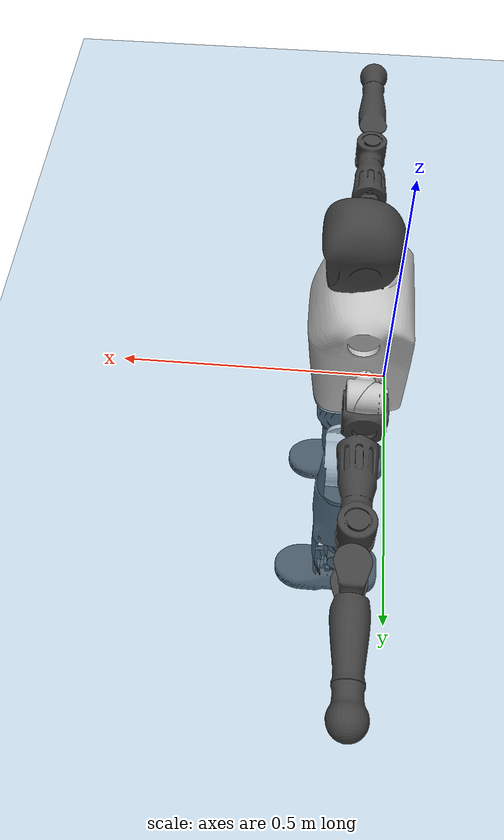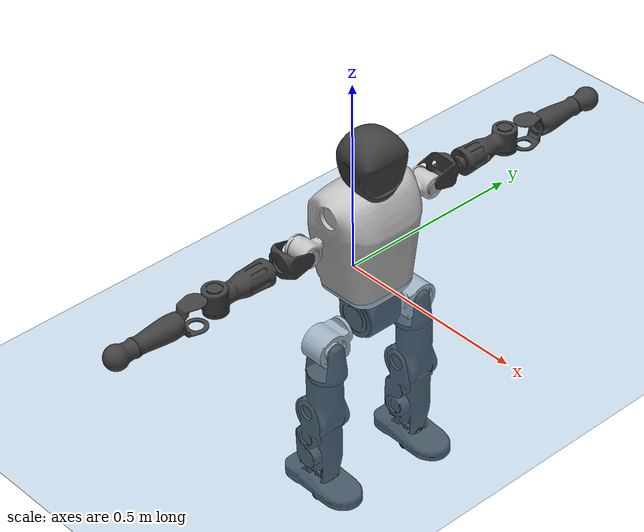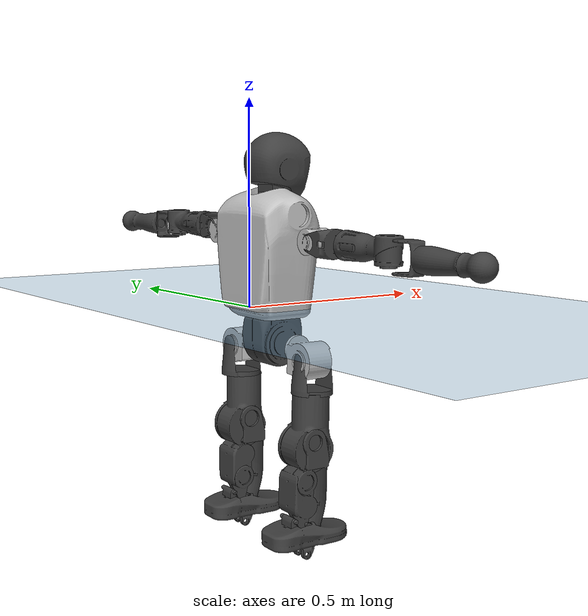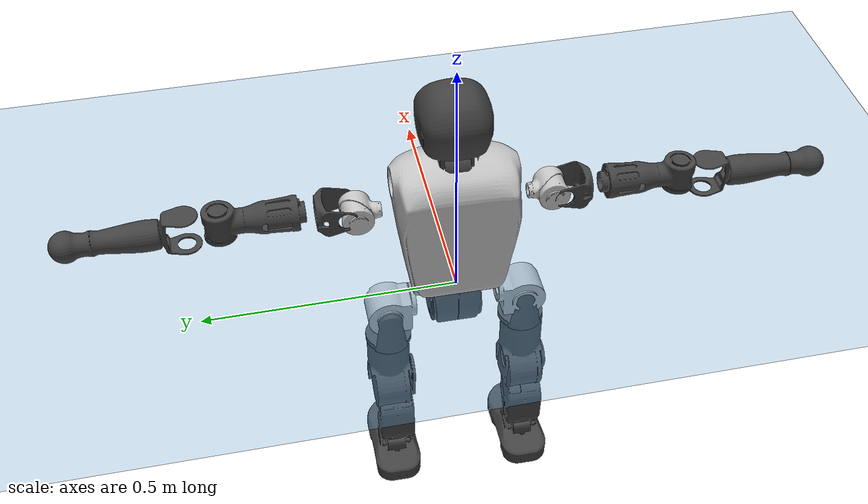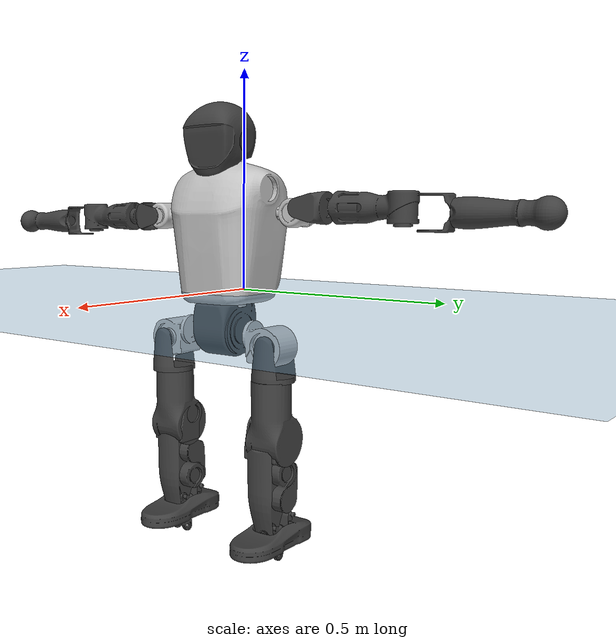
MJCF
<mujoco model="T1">
  <compiler angle="radian" assetdir="assets" balanceinertia="true" inertiafromgeom="false"/>

  <option timestep="0.005" density="1.2" viscosity="2e-05"/>

  <size nkey="1"/>

  <visual>
    <quality shadowsize="8192"/>
    <map shadowclip="0.5"/>
  </visual>

  <default>
    <default class="/">
      <joint armature="0.01" damping="0.01" frictionloss="0.1"/>
      <geom contype="0" conaffinity="0" group="1" solref="-1000 -80"/>
      <site size="0.01 0.005 0.005" group="5"/>
      <general forcelimited="true" biastype="affine" gainprm="25" biasprm="0 -25 -0.6"/>
      <default class="t1">
        <geom rgba="0.25 0.25 0.25 1"/>
        <default class="visual">
          <geom type="mesh" group="2"/>
        </default>
        <default class="collision">
          <geom group="3"/>
        </default>
        <default class="foot">
          <geom size="0.1115 0.05 0.015" type="box" condim="6" group="4" priority="1" solimp="0.015 1 0.015"/>
        </default>
        <default class="reward_collision_sphere">
          <geom group="5" rgba="1 0 0 1"/>
        </default>
      </default>
    </default>
  </default>

  <asset>
    <texture type="skybox" colorspace="auto" name="//unnamed_texture_0" builtin="gradient" rgb1="0.95 0.95 0.95" rgb2="0.95 0.95 0.95" width="100" height="600"/>
    <texture type="2d" colorspace="auto" name="texplane" builtin="checker" rgb1="0.345 0.575 0.748" rgb2="0.345 0.575 0.748" markrgb="1 1 1" width="512" height="512"/>
    <material name="MatPlane" class="/" texture="texplane" texuniform="true" texrepeat="2 2" specular="0.9"/>
    <mesh name="Trunk" class="/" file="Trunk.stl"/>
    <mesh name="H1" class="/" file="H1.stl"/>
    <mesh name="H2" class="/" file="H2.stl"/>
    <mesh name="AL1" class="/" file="AL1.stl"/>
    <mesh name="AL2" class="/" file="AL2.stl"/>
    <mesh name="AL3" class="/" file="AL3.stl"/>
    <mesh name="left_hand_link" class="/" file="left_hand_link.stl"/>
    <mesh name="AR1" class="/" file="AR1.stl"/>
    <mesh name="AR2" class="/" file="AR2.stl"/>
    <mesh name="AR3" class="/" file="AR3.stl"/>
    <mesh name="right_hand_link" class="/" file="right_hand_link.stl"/>
    <mesh name="Waist" class="/" file="Waist.stl"/>
    <mesh name="Hip_Pitch_Left" class="/" file="Hip_Pitch_Left.stl"/>
    <mesh name="Hip_Roll_Left" class="/" file="Hip_Roll_Left.stl"/>
    <mesh name="Hip_Yaw_Left" class="/" file="Hip_Yaw_Left.stl"/>
    <mesh name="Shank_Left" class="/" file="Shank_Left.stl"/>
    <mesh name="Ankle_Cross_Left" class="/" file="Ankle_Cross_Left.stl"/>
    <mesh name="left_foot_link" class="/" file="left_foot_link.stl"/>
    <mesh name="Hip_Pitch_Right" class="/" file="Hip_Pitch_Right.stl"/>
    <mesh name="Hip_Roll_Right" class="/" file="Hip_Roll_Right.stl"/>
    <mesh name="Hip_Yaw_Right" class="/" file="Hip_Yaw_Right.stl"/>
    <mesh name="Shank_Right" class="/" file="Shank_Right.stl"/>
    <mesh name="Ankle_Cross_Right" class="/" file="Ankle_Cross_Right.stl"/>
    <mesh name="right_foot_link" class="/" file="right_foot_link.stl"/>
  </asset>

  <worldbody>
    <geom name="floor" class="/" size="100 100 0.125" type="plane" group="0" material="MatPlane"/>
    <light name="toplight_shadow" class="/" pos="0 0 5" dir="0.0990148 0.0990148 -0.990148" type="directional" ambient="0.04 0.04 0.04" diffuse="0.55 0.55 0.55" specular="0.12 0.12 0.12"/>
    <light name="toplight_fill" class="/" pos="0 0 5" dir="0.0990148 0.0990148 -0.990148" type="directional" castshadow="false" ambient="0.04 0.04 0.04" diffuse="0.3 0.3 0.3" specular="0.08 0.08 0.08"/>
    <body name="trunk" childclass="t1" pos="-0.000984137 -0.00497241 0.00928613" quat="0.999987 0.00433083 -0.00080124 -0.00260549">
      <inertial pos="0.0573733 -0.000993287 0.0832127" quat="0.999956 -0.000346155 -0.00937435 -0.000735455" mass="15.2548" diaginertia="0.117322 0.404977 0.017714"/>
      <joint name="//unnamed_joint_0" type="free" armature="0" damping="0" frictionloss="0"/>
      <geom name="//unnamed_geom_1" class="visual" rgba="0.76 0.76 0.76 1" mesh="Trunk"/>
      <geom name="//unnamed_geom_2" class="collision" size="0.0792693 0.105692 0.158539" pos="0.0612669 0 0.0926273" type="box"/>
      <geom name="//unnamed_geom_3" class="reward_collision_sphere" size="0.121546" pos="0.0612669 0 0.0771895"/>
      <geom name="//unnamed_geom_4" class="reward_collision_sphere" size="0.0158539" pos="0.0612669 0.11711 0"/>
      <geom name="//unnamed_geom_5" class="reward_collision_sphere" size="0.0158539" pos="0.0612669 -0.11711 0"/>
      <geom name="//unnamed_geom_6" class="reward_collision_sphere" size="0.0158539" pos="0.0612669 0.147421 0.138941"/>
      <geom name="//unnamed_geom_7" class="reward_collision_sphere" size="0.0158539" pos="0.0612669 -0.147421 0.138941"/>
      <site name="imu" pos="0.0454432 -0.00778559 -0.00745309" size="0.0105692"/>
      <camera name="track" pos="0 -2.75552 0" quat="0.707107 0.707107 0 0" mode="trackcom"/>
      <camera name="ego_camera" pos="0.124576 0 0.324196" quat="-0.5 -0.5 0.5 0.5"/>
      <body name="H1" pos="0.0584928 -0.0012064 0.181757" quat="0.999991 0.00248241 -0.00312796 -0.0015723">
        <inertial pos="-0.00753082 -0.00527423 0.0439966" quat="0.764208 -0.0161041 0.0105271 0.644683" mass="0.49545" diaginertia="0.000257446 0.00100596 4.42165e-05"/>
        <joint name="AAHead_yaw" pos="0 0 0" axis="0.000159578 0.00859425 0.999963" range="-1.35265 1.58427" armature="0.0113512" damping="0.0223394" frictionloss="0.0949796"/>
        <geom name="//unnamed_geom_8" class="visual" mesh="H1"/>
        <body name="H2" pos="1.95562e-05 -0.000682065 0.0416086" quat="0.999988 -0.00329609 0.0019538 -0.00302806">
          <inertial pos="0.00773337 0.00205825 0.0751359" quat="0.988613 0.1057 -0.0732248 -0.0781649" mass="0.851278" diaginertia="0.00245995 0.0104735 0.000476614"/>
          <joint name="Head_pitch" pos="0 0 0" axis="0.000689568 -0.999018 -0.0443013" stiffness="0.0123405" range="-1.1004 0.165865" armature="0.00651417" damping="0" frictionloss="0.0539354"/>
          <geom name="//unnamed_geom_9" class="visual" mesh="H2"/>
          <geom name="//unnamed_geom_10" class="collision" size="0.0845539" pos="0.0102112 0 0.0849084"/>
          <geom name="//unnamed_geom_11" class="reward_collision_sphere" size="0.0951232" pos="0.0204223 0 0.0771895"/>
        </body>
      </body>
      <body name="AL1" pos="0.0494677 0.142302 0.165578" quat="0.999999 0.000456763 0.000284804 0.000922755">
        <inertial pos="0.00928329 0.0643839 0.0029575" quat="0.499145 0.509037 -0.51834 0.472291" mass="0.659117" diaginertia="0.00158816 0.00585403 8.2958e-05"/>
        <joint name="Left_Shoulder_Pitch" pos="0 0 0" axis="0.00470707 0.999982 -0.00382472" stiffness="0.0034378" range="-3.3184 1.22034" armature="0.0112189" damping="0" frictionloss="0.117683"/>
        <geom name="//unnamed_geom_12" class="visual" rgba="0.76 0.76 0.76 1" mesh="AL1"/>
        <body name="AL2" pos="0.000427193 0.067462 0.00999358" quat="0.999989 -0.00312678 -0.00309134 0.00133566">
          <inertial pos="0.00602828 0.0501567 0.00795975" quat="0.48732 0.520229 -0.478594 0.512668" mass="0.176831" diaginertia="0.000457042 0.00185377 4.91385e-05"/>
          <joint name="Left_Shoulder_Roll" pos="0 0 0" axis="-0.998916 0.0382378 -0.026532" range="-1.54332 1.74247" armature="0.0111486" damping="0.0108054" frictionloss="0.154429"/>
          <geom name="//unnamed_geom_13" class="visual" mesh="AL2"/>
          <body name="AL3" pos="0.00962283 0.0864969 0.000177719" quat="0.999999 -0.000702901 -0.00079093 -9.61585e-05">
            <inertial pos="-0.000493548 0.118026 -0.00822759" quat="0.707469 0.70674 -0.00227152 -0.000993089" mass="1.17654" diaginertia="0.0137899 0.0621979 0.000177859"/>
            <joint name="Left_Elbow_Pitch" pos="0 0 0" axis="0.00162919 -0.999095 -0.0424986" range="-2.26302 2.25469" armature="0.0112158" damping="0.00164453" frictionloss="0.0929913"/>
            <geom name="//unnamed_geom_14" class="visual" mesh="AL3"/>
            <geom name="//unnamed_geom_15" class="collision" size="0.0317077 0.0792693" pos="0 0.0688881 0" quat="0.707105 0.707108 0 0" type="cylinder"/>
            <geom name="//unnamed_geom_16" class="reward_collision_sphere" size="0.0380493"/>
            <body name="left_hand_link" pos="0.00508895 0.211383 -0.0101932" quat="1 -0.000785797 0.000270475 -6.56322e-06">
              <inertial pos="-0.000473048 0.148009 -0.00548259" quat="0.703827 0.710329 -0.00735865 -0.00253871" mass="0.348228" diaginertia="0.00887939 0.0329465 5.15238e-05"/>
              <joint name="Left_Elbow_Yaw" pos="0 0 0" axis="0.0124185 0.0379294 0.999203" stiffness="0.0279991" range="-2.46404 0.0399354" armature="0.0114812" damping="0.0182386" frictionloss="0.0802566"/>
              <geom name="//unnamed_geom_17" class="visual" mesh="left_hand_link"/>
              <geom name="//unnamed_geom_18" class="collision" size="0.0317077 0.0924809" pos="0 0.179109 0" quat="0.707105 0.707108 0 0" type="cylinder"/>
              <geom name="//unnamed_geom_19" class="reward_collision_sphere" size="0.0528462"/>
              <geom name="//unnamed_geom_20" class="reward_collision_sphere" size="0.0369923" pos="0 0.151554 0"/>
              <geom name="//unnamed_geom_21" class="reward_collision_sphere" size="0.0369923" pos="0 0.296219 0"/>
            </body>
          </body>
        </body>
      </body>
      <body name="AR1" pos="0.0522772 -0.143645 0.161635" quat="0.999991 0.00264076 0.00103335 -0.00330096">
        <inertial pos="-0.00100759 -0.059198 4.6765e-05" quat="0.505877 0.485011 -0.514925 0.493664" mass="0.623534" diaginertia="0.00168541 0.00665635 8.02266e-05"/>
        <joint name="Right_Shoulder_Pitch" pos="0 0 0" axis="0.00100934 -0.999997 -0.00211855" stiffness="0.0376709" range="-1.21385 3.21021" armature="0.0109168" damping="0.0420891" frictionloss="0.113618"/>
        <geom name="//unnamed_geom_22" class="visual" rgba="0.76 0.76 0.76 1" mesh="AR1"/>
        <body name="AR2" pos="-0.000821853 -0.0655759 -0.000724947" quat="0.999997 0.00100315 -0.00139468 -0.00160028">
          <inertial pos="0.00612794 -0.0509136 -0.0052964" quat="0.514305 0.480226 -0.512212 0.492454" mass="0.208995" diaginertia="0.000390922 0.00170502 5.35871e-05"/>
          <joint name="Right_Shoulder_Roll" pos="0 0 0" axis="-0.999932 0.0114569 -0.00236357" range="-1.75065 1.59415" armature="0.0103887" damping="0" frictionloss="0.0638444"/>
          <geom name="//unnamed_geom_23" class="visual" mesh="AR2"/>
          <body name="AR3" pos="0.000229873 -0.090604 0.000976769" quat="1 -3.60576e-05 6.70806e-05 0.000223106">
            <inertial pos="0.00979316 -0.115373 4.46151e-05" quat="0.690162 0.723503 -0.00779413 0.0126242" mass="1.07368" diaginertia="0.015275 0.0697596 0.000169609"/>
            <joint name="Right_Elbow_Pitch" pos="0 0 0" axis="-0.00323991 0.999842 -0.017455" stiffness="0.0510051" range="-2.28471 2.33707" armature="0.014365" damping="0.00971216" frictionloss="0.097598"/>
            <geom name="//unnamed_geom_24" class="visual" mesh="AR3"/>
            <geom name="//unnamed_geom_25" class="collision" size="0.0317077 0.0792693" pos="0 -0.0688881 0" quat="0.707105 0.707108 0 0" type="cylinder"/>
            <geom name="//unnamed_geom_26" class="reward_collision_sphere" size="0.0380493"/>
            <body name="right_hand_link" pos="-0.00115365 -0.20275 -0.0099358" quat="1 -0.000189021 -0.000194532 0.000224619">
              <inertial pos="0.00517225 -0.157248 0.00146275" quat="0.704408 0.709786 -0.00181659 -0.00295367" mass="0.403393" diaginertia="0.00919288 0.0430148 5.88285e-05"/>
              <joint name="Right_Elbow_Yaw" pos="0 0 0" axis="-0.00611882 -0.00345256 0.999975" stiffness="0.00151481" range="-0.0334869 2.43031" armature="0.0114955" damping="0.0230699" frictionloss="0.115423"/>
              <geom name="//unnamed_geom_27" class="visual" mesh="right_hand_link"/>
              <geom name="//unnamed_geom_28" class="collision" size="0.0317077 0.0924809" pos="0 -0.179109 0" quat="0.707105 0.707108 0 0" type="cylinder"/>
              <geom name="//unnamed_geom_29" class="reward_collision_sphere" size="0.0528462"/>
              <geom name="//unnamed_geom_30" class="reward_collision_sphere" size="0.0369923" pos="0 -0.151554 0"/>
              <geom name="//unnamed_geom_31" class="reward_collision_sphere" size="0.0369923" pos="0 -0.296219 0"/>
            </body>
          </body>
        </body>
      </body>
      <body name="Waist" pos="0.0640354 -0.00131548 -0.0953472" quat="1 1.49065e-05 0.000380364 -0.000198115">
        <inertial pos="-0.00127524 0.00169519 0.00350773" quat="0.983222 0.00869393 -0.182205 -0.00035074" mass="3.03952" diaginertia="0.00632135 0.0235239 0.0013751"/>
        <joint name="Waist" pos="0 0 0" axis="-0.00166975 0.000641037 0.999998" stiffness="0.0212319" range="-1.44821 1.5006" armature="0.0117573" damping="0.0494526" frictionloss="0.101934"/>
        <geom name="//unnamed_geom_32" class="visual" mesh="Waist"/>
        <body name="Hip_Pitch_Left" pos="0.00368282 0.135614 -0.00842894" quat="0.999999 -0.000357589 0.00110114 -0.000555831">
          <inertial pos="0.00567416 -0.00845381 -0.00380851" quat="0.975177 0.220912 0.0148286 0.00280889" mass="1.07139" diaginertia="0.00188077 0.00739612 0.000345551"/>
          <joint name="Left_Hip_Pitch" pos="0 0 0" axis="0.0124522 0.999761 0.0179455" stiffness="0.0335617" range="-1.94207 1.60396" armature="0.0107596" damping="0.0430242" frictionloss="0.145198"/>
          <geom name="//unnamed_geom_33" class="visual" rgba="0.76 0.76 0.76 1" mesh="Hip_Pitch_Left"/>
          <body name="Hip_Roll_Left" pos="-0.00263816 0.000945834 -0.0196247" quat="1 -8.86413e-05 -3.06883e-05 1.67477e-05">
            <inertial pos="0.000257969 -0.000433213 -0.0419399" quat="0.71142 -0.00821116 0.00603977 0.702693" mass="0.412035" diaginertia="0.00178161 0.00660853 0.000133631"/>
            <joint name="Left_Hip_Roll" pos="0 0 0" axis="-0.999974 0.00719572 0.000107641" range="-1.6855 0.191175" armature="0.0102085" damping="0" frictionloss="0.136085"/>
            <geom name="//unnamed_geom_34" class="visual" mesh="Hip_Roll_Left"/>
            <geom name="//unnamed_geom_35" class="reward_collision_sphere" size="0.0581308"/>
            <body name="Hip_Yaw_Left" pos="0.00676893 0.000575128 -0.0740658" quat="1 4.99754e-05 2.789e-05 0.000187145">
              <inertial pos="-0.00675705 0.00144906 -0.0600261" quat="0.69318 -0.0305567 -0.0275733 0.719588" mass="2.78816" diaginertia="0.0251825 0.126527 0.000737223"/>
              <joint name="Left_Hip_Yaw" pos="0 0 0" axis="0.0154848 -0.0272879 -0.999508" stiffness="0.051866" range="-1.0422 0.880034" armature="0.0138405" damping="0.0285424" frictionloss="0.148468"/>
              <geom name="//unnamed_geom_36" class="visual" mesh="Hip_Yaw_Left"/>
              <geom name="//unnamed_geom_37" class="collision" size="0.0528462 0.0845539" type="cylinder"/>
              <body name="Shank_Left" pos="-0.00972574 -0.00870882 -0.111626" quat="0.999988 0.00343864 0.0011039 -0.00333406">
                <inertial pos="-0.009424 0.0110978 -0.0942769" quat="0.998449 0.0108212 0.0140041 0.0527882" mass="1.91758" diaginertia="0.0337064 0.160735 0.000500133"/>
                <joint name="Left_Knee_Pitch" pos="0 0 0" axis="-0.00517739 0.999856 0.0161701" range="0.00665917 2.33242" armature="0.00746931" damping="0.00615681" frictionloss="0.151242"/>
                <geom name="//unnamed_geom_38" class="visual" mesh="Shank_Left"/>
                <geom name="//unnamed_geom_39" class="collision" size="0.0528462 0.0792693" pos="0 0 -0.0926273" type="cylinder"/>
                <geom name="//unnamed_geom_40" class="reward_collision_sphere" size="0.0687001"/>
                <body name="Ankle_Cross_Left" pos="0.00999976 0.0016898 -0.217322" quat="1 0.000150558 9.39429e-05 -3.31921e-05">
                  <inertial pos="-0.00201933 -0.00163705 -0.00427966" quat="0.4795 0.528808 0.559346 0.421395" mass="0.083762" diaginertia="3.20156e-05 0.000123356 3.09994e-06"/>
                  <joint name="Left_Ankle_Pitch" pos="0 0 0" axis="-0.0228156 0.999714 -0.00710723" stiffness="0.000896196" range="-0.863424 0.508571" armature="0.0113424" damping="0.00106116" frictionloss="0.0969154"/>
                  <geom name="//unnamed_geom_41" class="visual" mesh="Ankle_Cross_Left"/>
                  <body name="left_foot_link" pos="-0.00588972 0.00230814 -0.0111982" quat="0.999997 0.00144112 0.00196008 0.000289457">
                    <inertial pos="0.00116491 0.000611958 -0.0175693" quat="0.00207073 0.621211 -0.000957438 0.78364" mass="0.875053" diaginertia="0.00328093 0.0117956 0.000639797"/>
                    <joint name="Left_Ankle_Roll" pos="0 0 0" axis="-0.999785 0.0191766 -0.0078533" range="-0.330201 0.387843" armature="0.0108998" damping="0" frictionloss="0.102883"/>
                    <geom name="//unnamed_geom_42" class="visual" mesh="left_foot_link"/>
                    <geom name="left_foot" class="foot" size="0.0800978 0.0350963 0.014095" pos="0.0102112 0 -0.0115784"/>
                    <geom name="//unnamed_geom_44" class="reward_collision_sphere" size="0.0549601" pos="0.0102112 0 -0.0115784"/>
                    <geom name="//unnamed_geom_45" class="reward_collision_sphere" size="0.0317077" pos="0.097006 -0.0316885 -0.0115784"/>
                    <geom name="//unnamed_geom_46" class="reward_collision_sphere" size="0.0317077" pos="-0.0714781 -0.0316885 -0.0115784"/>
                    <site name="left_foot" class="foot" pos="0.0102112 0 -0.0115784" size="0.0105692"/>
                  </body>
                </body>
              </body>
            </body>
          </body>
        </body>
        <body name="Hip_Pitch_Right" pos="0.00599791 -0.14765 -0.00804608" quat="0.99999 0.00313992 0.00318591 0.000230995">
          <inertial pos="0.000918065 0.0203977 -0.0142508" quat="0.973814 -0.227249 0.00558244 0.00358358" mass="1.19349" diaginertia="0.00202644 0.00725073 0.000325315"/>
          <joint name="Right_Hip_Pitch" pos="0 0 0" axis="0.00347255 -0.999955 0.00883479" stiffness="0.0188891" range="-1.66309 1.95655" armature="0.0107956" damping="0" frictionloss="0.0544769"/>
          <geom name="//unnamed_geom_47" class="visual" rgba="0.76 0.76 0.76 1" mesh="Hip_Pitch_Right"/>
          <body name="Hip_Roll_Right" pos="0.00810799 -0.00266948 -0.0219247" quat="1 -0.000570968 0.000517261 0.000249149">
            <inertial pos="0.0026407 -0.000110452 -0.0444463" quat="0.706511 -0.00399622 -0.00419735 0.707678" mass="0.454187" diaginertia="0.00220836 0.00738726 0.000139196"/>
            <joint name="Right_Hip_Roll" pos="0 0 0" axis="-0.99986 0.0131766 -0.0103062" stiffness="0.00557568" range="-0.300626 1.60567" armature="0.00919465" damping="0.0200194" frictionloss="0.0679092"/>
            <geom name="//unnamed_geom_48" class="visual" mesh="Hip_Roll_Right"/>
            <geom name="//unnamed_geom_49" class="reward_collision_sphere" size="0.0581308"/>
            <body name="Hip_Yaw_Right" pos="-0.00709073 -0.00195888 -0.0707133" quat="1 0.000344255 0.000142847 0.000620131">
              <inertial pos="0.000155194 -0.010702 -0.0686378" quat="0.718236 -0.0253968 -0.0286387 0.694746" mass="2.95526" diaginertia="0.0289716 0.139881 0.000823561"/>
              <joint name="Right_Hip_Yaw" pos="0 0 0" axis="-0.00782736 -0.0026329 -0.999966" range="-0.994093 1.02664" armature="0.0111882" damping="0" frictionloss="0.107465"/>
              <geom name="//unnamed_geom_50" class="visual" mesh="Hip_Yaw_Right"/>
              <geom name="//unnamed_geom_51" class="collision" size="0.0528462 0.0845539" type="cylinder"/>
              <body name="Shank_Right" pos="-0.0175299 -0.00283538 -0.113344" quat="1 0.000562852 4.09127e-05 0.000369868">
                <inertial pos="0.00518982 -0.00167392 -0.0894346" quat="0.996706 0.000471543 -0.0173766 -0.0792171" mass="2.20924" diaginertia="0.0436254 0.179604 0.000618017"/>
                <joint name="Right_Knee_Pitch" pos="0 0 0" axis="0.00144579 -0.999997 -0.00189848" range="-2.33526 0.164729" armature="0.0115363" damping="0.00938337" frictionloss="0.134939"/>
                <geom name="//unnamed_geom_52" class="visual" mesh="Shank_Right"/>
                <geom name="//unnamed_geom_53" class="collision" size="0.0528462 0.0792693" pos="0 0 -0.0926273" type="cylinder"/>
                <geom name="//unnamed_geom_54" class="reward_collision_sphere" size="0.0687001"/>
                <body name="Ankle_Cross_Right" pos="0.00342121 0.00282075 -0.208418" quat="1 0.000604067 0.000418231 0.00016324">
                  <inertial pos="-0.00625107 0.003669 -0.00818323" quat="0.448637 0.538097 0.548556 0.456358" mass="0.0913748" diaginertia="3.29849e-05 0.000126491 3.12066e-06"/>
                  <joint name="Right_Ankle_Pitch" pos="0 0 0" axis="0.00202461 -0.999948 0.0100011" range="-0.57202 0.773464" armature="0.0100489" damping="0" frictionloss="0.11011"/>
                  <geom name="//unnamed_geom_55" class="visual" mesh="Ankle_Cross_Right"/>
                  <body name="right_foot_link" pos="-0.00195129 -0.000857886 -0.0142856" quat="0.999999 -0.000213378 0.000174292 0.00105272">
                    <inertial pos="0.00121179 0.00194629 -0.0171676" quat="0.00337551 0.623165 0.00107397 0.782082" mass="0.806066" diaginertia="0.00295323 0.0126338 0.00060785"/>
                    <joint name="Right_Ankle_Roll" pos="0 0 0" axis="-0.999987 0.00498804 0.00128719" range="-0.430404 0.478484" armature="0.0113446" damping="0.0160102" frictionloss="0.0474004"/>
                    <geom name="//unnamed_geom_56" class="visual" mesh="right_foot_link"/>
                    <geom name="right_foot" class="foot" size="0.0930389 0.073528 0.00933202" pos="0.0102112 0 -0.0115784"/>
                    <geom name="//unnamed_geom_58" class="reward_collision_sphere" size="0.042277"/>
                    <geom name="//unnamed_geom_59" class="reward_collision_sphere" size="0.0317077" pos="0.0102112 0 -0.0115784"/>
                    <geom name="//unnamed_geom_60" class="reward_collision_sphere" size="0.0317077" pos="0.097006 0.0316885 -0.0115784"/>
                    <geom name="//unnamed_geom_61" class="reward_collision_sphere" size="0.0317077" pos="-0.0714781 0.0316885 -0.0115784"/>
                    <site name="right_foot" class="foot" pos="0.0102112 0 -0.0115784" size="0.0105692"/>
                  </body>
                </body>
              </body>
            </body>
          </body>
        </body>
      </body>
    </body>
  </worldbody>

  <contact>
    <pair class="/" geom1="floor" geom2="left_foot" name="//unnamed_contact_0"/>
    <pair class="/" geom1="floor" geom2="right_foot" name="//unnamed_contact_1"/>
  </contact>

  <actuator>
    <general name="AAHead_yaw" class="/" joint="AAHead_yaw" forcerange="-7.57298 7.57298" gainprm="22.0424" biasprm="0 -22.0424 -0.661933"/>
    <general name="Head_pitch" class="/" joint="Head_pitch" forcerange="-6.59656 6.59656" gainprm="22.0424" biasprm="0 -22.0424 -0.661933"/>
    <general name="Left_Shoulder_Pitch" class="/" joint="Left_Shoulder_Pitch" forcerange="-20.8634 20.8634" gainprm="22.0424" biasprm="0 -22.0424 -0.661933"/>
    <general name="Left_Shoulder_Roll" class="/" joint="Left_Shoulder_Roll" forcerange="-18.5713 18.5713" gainprm="22.0424" biasprm="0 -22.0424 -0.661933"/>
    <general name="Left_Elbow_Pitch" class="/" joint="Left_Elbow_Pitch" forcerange="-24.5507 24.5507" gainprm="22.0424" biasprm="0 -22.0424 -0.661933"/>
    <general name="Left_Elbow_Yaw" class="/" joint="Left_Elbow_Yaw" forcerange="-18.8781 18.8781" gainprm="22.0424" biasprm="0 -22.0424 -0.661933"/>
    <general name="Right_Shoulder_Pitch" class="/" joint="Right_Shoulder_Pitch" forcerange="-19.3119 19.3119" gainprm="22.0424" biasprm="0 -22.0424 -0.661933"/>
    <general name="Right_Shoulder_Roll" class="/" joint="Right_Shoulder_Roll" forcerange="-15.913 15.913" gainprm="22.0424" biasprm="0 -22.0424 -0.661933"/>
    <general name="Right_Elbow_Pitch" class="/" joint="Right_Elbow_Pitch" forcerange="-19.471 19.471" gainprm="22.0424" biasprm="0 -22.0424 -0.661933"/>
    <general name="Right_Elbow_Yaw" class="/" joint="Right_Elbow_Yaw" forcerange="-20.3769 20.3769" gainprm="22.0424" biasprm="0 -22.0424 -0.661933"/>
    <general name="Waist" class="/" joint="Waist" forcerange="-30.4017 30.4017" gainprm="22.0424" biasprm="0 -22.0424 -0.661933"/>
    <general name="Left_Hip_Pitch" class="/" joint="Left_Hip_Pitch" forcerange="-49.3705 49.3705" gainprm="22.0424" biasprm="0 -22.0424 -0.661933"/>
    <general name="Left_Hip_Roll" class="/" joint="Left_Hip_Roll" forcerange="-20.1523 20.1523" gainprm="22.0424" biasprm="0 -22.0424 -0.661933"/>
    <general name="Left_Hip_Yaw" class="/" joint="Left_Hip_Yaw" forcerange="-37.2389 37.2389" gainprm="22.0424" biasprm="0 -22.0424 -0.661933"/>
    <general name="Left_Knee_Pitch" class="/" joint="Left_Knee_Pitch" forcerange="-41.6422 41.6422" gainprm="22.0424" biasprm="0 -22.0424 -0.661933"/>
    <general name="Left_Ankle_Pitch" class="/" joint="Left_Ankle_Pitch" forcerange="-24.6576 24.6576" gainprm="22.0424" biasprm="0 -22.0424 -0.661933"/>
    <general name="Left_Ankle_Roll" class="/" joint="Left_Ankle_Roll" forcerange="-18.1544 18.1544" gainprm="22.0424" biasprm="0 -22.0424 -0.661933"/>
    <general name="Right_Hip_Pitch" class="/" joint="Right_Hip_Pitch" forcerange="-62.1744 62.1744" gainprm="22.0424" biasprm="0 -22.0424 -0.661933"/>
    <general name="Right_Hip_Roll" class="/" joint="Right_Hip_Roll" forcerange="-30.3249 30.3249" gainprm="22.0424" biasprm="0 -22.0424 -0.661933"/>
    <general name="Right_Hip_Yaw" class="/" joint="Right_Hip_Yaw" forcerange="-25.9083 25.9083" gainprm="22.0424" biasprm="0 -22.0424 -0.661933"/>
    <general name="Right_Knee_Pitch" class="/" joint="Right_Knee_Pitch" forcerange="-65.4436 65.4436" gainprm="22.0424" biasprm="0 -22.0424 -0.661933"/>
    <general name="Right_Ankle_Pitch" class="/" joint="Right_Ankle_Pitch" forcerange="-21.6134 21.6134" gainprm="22.0424" biasprm="0 -22.0424 -0.661933"/>
    <general name="Right_Ankle_Roll" class="/" joint="Right_Ankle_Roll" forcerange="-14.7688 14.7688" gainprm="22.0424" biasprm="0 -22.0424 -0.661933"/>
  </actuator>

  <sensor>
    <gyro site="imu" name="imu_angular_velocity"/>
    <velocimeter site="imu" name="imu_linear_velocity"/>
    <framelinvel objtype="site" objname="left_foot" name="left_foot_global_linear_velocity"/>
    <framelinvel objtype="site" objname="right_foot" name="right_foot_global_linear_velocity"/>
  </sensor>

  <keyframe>
    <key name="home" qpos="0 0 0.6385 1 0 0 0 0 0 0 1.4 0 -0.4 0 -1.4 0 0.4 0 -0.4 0 0 0.8 -0.4 0 0.4 0 0 -0.8 0.4 0"/>
  </keyframe>
</mujoco>
